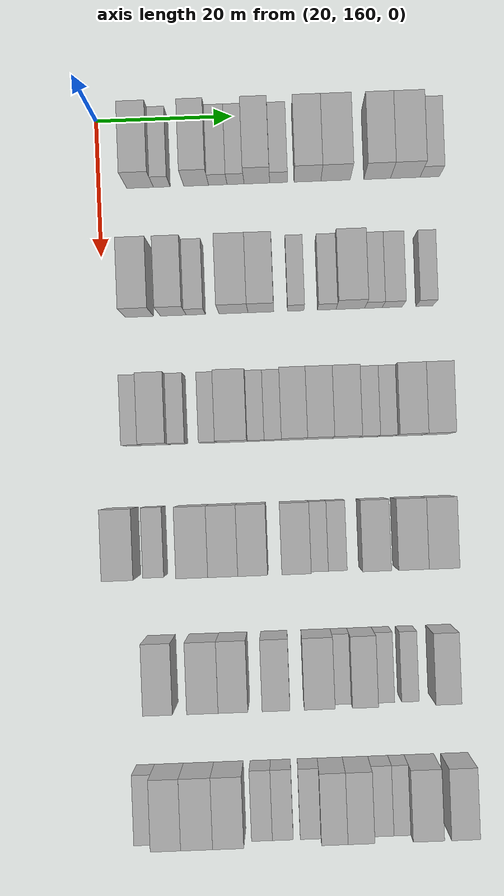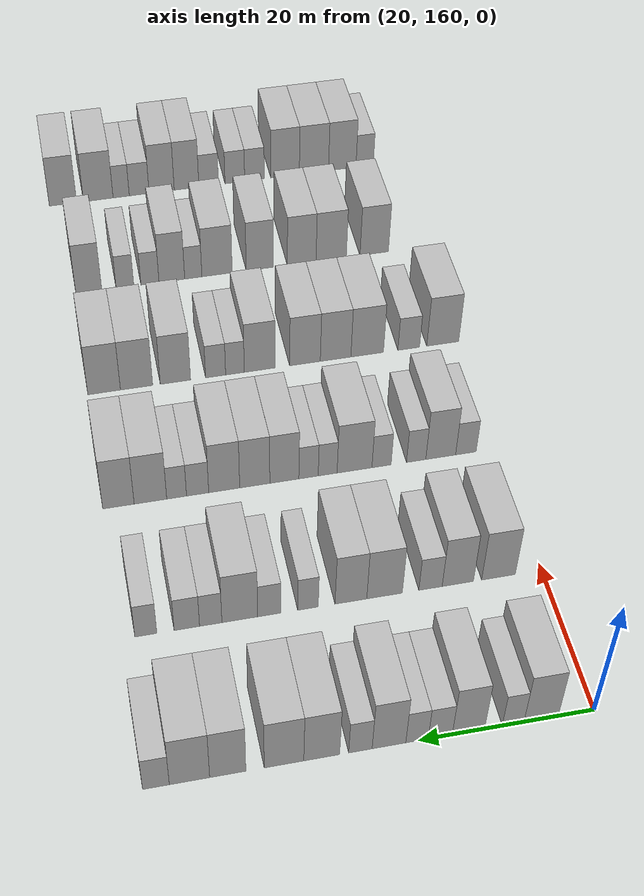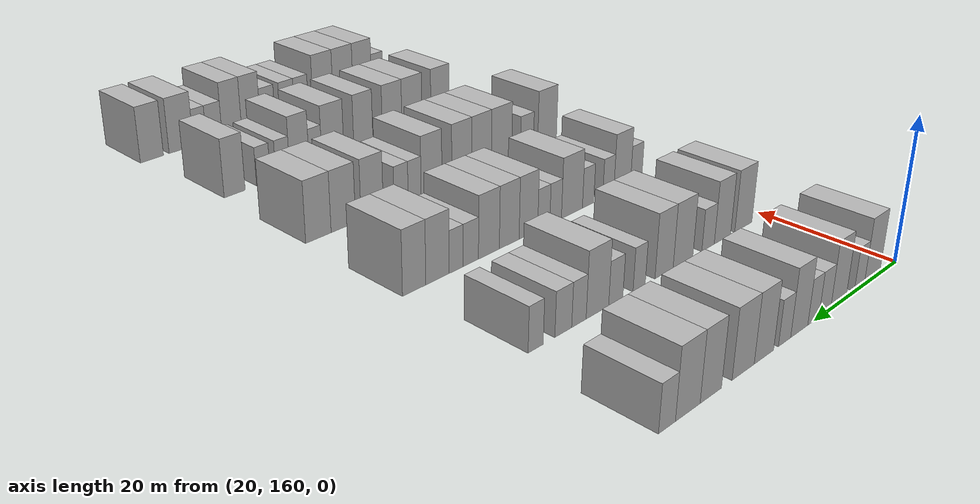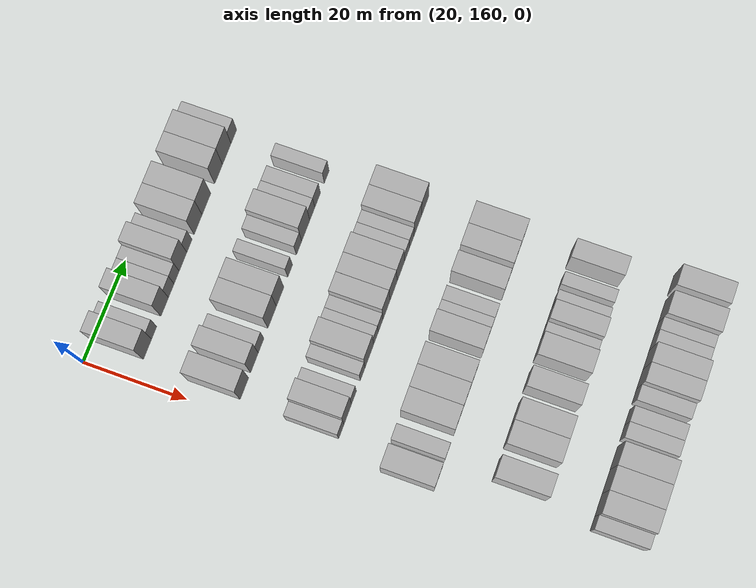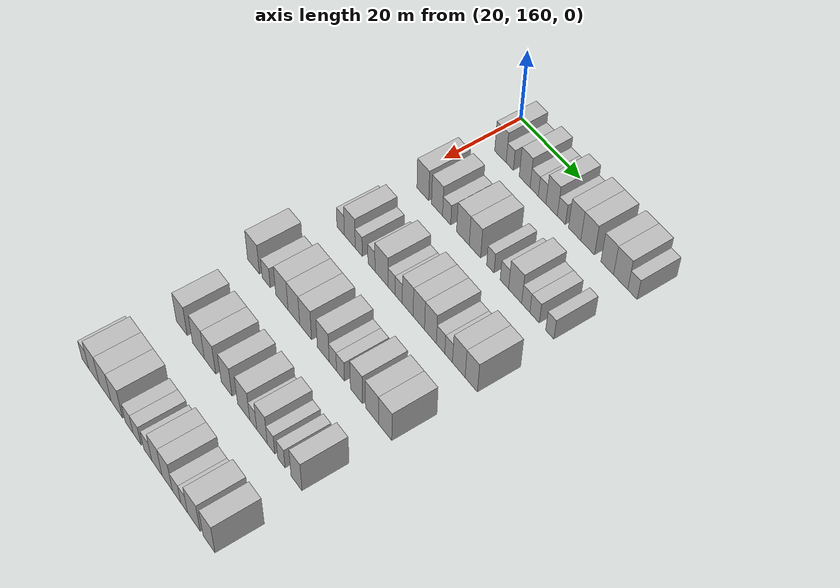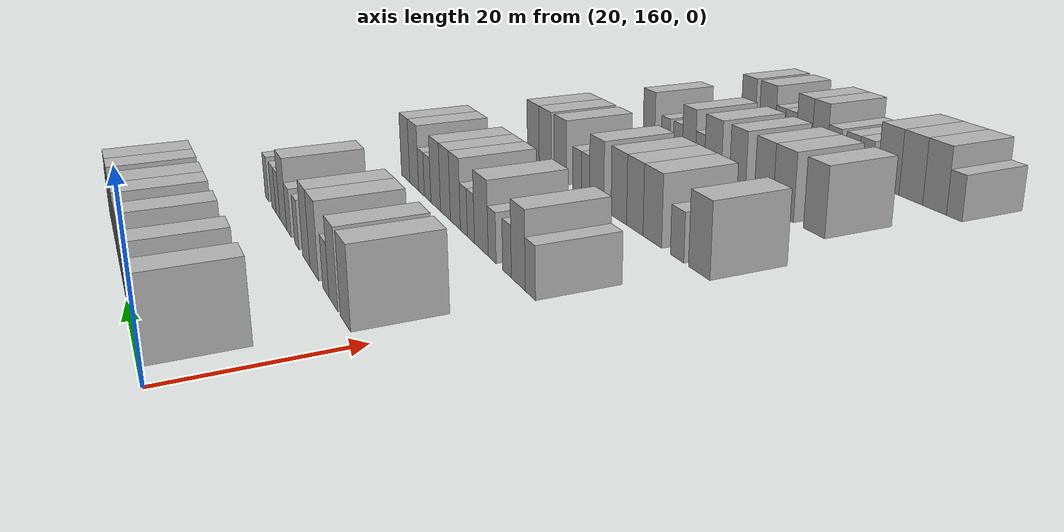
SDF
<sdf version="1.6">
 <world name="default">
  <model name="building_128">
   <static>1</static>
   <pose>25.0000 166.0860 0 0.000000 0.000000 0.000000</pose>
   <link name="link">
    <pose>0 0 4.50 0 0 0</pose>
    <collision name="collision"><geometry><box><size>10.0000 3.9395 9.0000</size></box></geometry></collision>
    <visual name="visual">
     <cast_shadows>0</cast_shadows>
     <geometry><box><size>10.0000 3.9395 9.0000</size></box></geometry>
     <material>
      <script>
       <uri>model://HANNAS_wall/materials/scripts</uri>
       <uri>model://HANNAS_wall/materials/textures</uri>
       <name>vrc/HANNAS_wall</name>
      </script>
     </material>
    </visual>
   </link>
  </model>
  <model name="building_129">
   <static>1</static>
   <pose>25.0000 169.2909 0 0.000000 0.000000 0.000000</pose>
   <link name="link">
    <pose>0 0 3.00 0 0 0</pose>
    <collision name="collision"><geometry><box><size>10.0000 2.4702 6.0000</size></box></geometry></collision>
    <visual name="visual">
     <cast_shadows>0</cast_shadows>
     <geometry><box><size>10.0000 2.4702 6.0000</size></box></geometry>
     <material>
      <script>
       <uri>model://HANNAS_wall/materials/scripts</uri>
       <uri>model://HANNAS_wall/materials/textures</uri>
       <name>vrc/HANNAS_wall</name>
      </script>
     </material>
    </visual>
   </link>
  </model>
  <model name="building_130">
   <static>1</static>
   <pose>25.0000 174.3585 0 0.000000 0.000000 0.000000</pose>
   <link name="link">
    <pose>0 0 4.50 0 0 0</pose>
    <collision name="collision"><geometry><box><size>10.0000 3.6649 9.0000</size></box></geometry></collision>
    <visual name="visual">
     <cast_shadows>0</cast_shadows>
     <geometry><box><size>10.0000 3.6649 9.0000</size></box></geometry>
     <material>
      <script>
       <uri>model://HANNAS_wall/materials/scripts</uri>
       <uri>model://HANNAS_wall/materials/textures</uri>
       <name>vrc/HANNAS_wall</name>
      </script>
     </material>
    </visual>
   </link>
  </model>
  <model name="building_131">
   <static>1</static>
   <pose>25.0000 177.5501 0 0.000000 0.000000 0.000000</pose>
   <link name="link">
    <pose>0 0 3.00 0 0 0</pose>
    <collision name="collision"><geometry><box><size>10.0000 2.7184 6.0000</size></box></geometry></collision>
    <visual name="visual">
     <cast_shadows>0</cast_shadows>
     <geometry><box><size>10.0000 2.7184 6.0000</size></box></geometry>
     <material>
      <script>
       <uri>model://HANNAS_wall/materials/scripts</uri>
       <uri>model://HANNAS_wall/materials/textures</uri>
       <name>vrc/HANNAS_wall</name>
      </script>
     </material>
    </visual>
   </link>
  </model>
  <model name="building_132">
   <static>1</static>
   <pose>25.0000 180.1657 0 0.000000 0.000000 0.000000</pose>
   <link name="link">
    <pose>0 0 3.00 0 0 0</pose>
    <collision name="collision"><geometry><box><size>10.0000 2.5128 6.0000</size></box></geometry></collision>
    <visual name="visual">
     <cast_shadows>0</cast_shadows>
     <geometry><box><size>10.0000 2.5128 6.0000</size></box></geometry>
     <material>
      <script>
       <uri>model://HANNAS_wall/materials/scripts</uri>
       <uri>model://HANNAS_wall/materials/textures</uri>
       <name>vrc/HANNAS_wall</name>
      </script>
     </material>
    </visual>
   </link>
  </model>
  <model name="building_133">
   <static>1</static>
   <pose>25.0000 183.3010 0 0.000000 0.000000 0.000000</pose>
   <link name="link">
    <pose>0 0 4.50 0 0 0</pose>
    <collision name="collision"><geometry><box><size>10.0000 3.7578 9.0000</size></box></geometry></collision>
    <visual name="visual">
     <cast_shadows>0</cast_shadows>
     <geometry><box><size>10.0000 3.7578 9.0000</size></box></geometry>
     <material>
      <script>
       <uri>model://HANNAS_wall/materials/scripts</uri>
       <uri>model://HANNAS_wall/materials/textures</uri>
       <name>vrc/HANNAS_wall</name>
      </script>
     </material>
    </visual>
   </link>
  </model>
  <model name="building_134">
   <static>1</static>
   <pose>25.0000 186.4812 0 0.000000 0.000000 0.000000</pose>
   <link name="link">
    <pose>0 0 3.00 0 0 0</pose>
    <collision name="collision"><geometry><box><size>10.0000 2.6027 6.0000</size></box></geometry></collision>
    <visual name="visual">
     <cast_shadows>0</cast_shadows>
     <geometry><box><size>10.0000 2.6027 6.0000</size></box></geometry>
     <material>
      <script>
       <uri>model://HANNAS_wall/materials/scripts</uri>
       <uri>model://HANNAS_wall/materials/textures</uri>
       <name>vrc/HANNAS_wall</name>
      </script>
     </material>
    </visual>
   </link>
  </model>
  <model name="building_135">
   <static>1</static>
   <pose>25.0000 190.7605 0 0.000000 0.000000 0.000000</pose>
   <link name="link">
    <pose>0 0 4.50 0 0 0</pose>
    <collision name="collision"><geometry><box><size>10.0000 3.9559 9.0000</size></box></geometry></collision>
    <visual name="visual">
     <cast_shadows>0</cast_shadows>
     <geometry><box><size>10.0000 3.9559 9.0000</size></box></geometry>
     <material>
      <script>
       <uri>model://HANNAS_wall/materials/scripts</uri>
       <uri>model://HANNAS_wall/materials/textures</uri>
       <name>vrc/HANNAS_wall</name>
      </script>
     </material>
    </visual>
   </link>
  </model>
  <model name="building_136">
   <static>1</static>
   <pose>25.0000 194.9058 0 0.000000 0.000000 0.000000</pose>
   <link name="link">
    <pose>0 0 4.50 0 0 0</pose>
    <collision name="collision"><geometry><box><size>10.0000 4.3346 9.0000</size></box></geometry></collision>
    <visual name="visual">
     <cast_shadows>0</cast_shadows>
     <geometry><box><size>10.0000 4.3346 9.0000</size></box></geometry>
     <material>
      <script>
       <uri>model://HANNAS_wall/materials/scripts</uri>
       <uri>model://HANNAS_wall/materials/textures</uri>
       <name>vrc/HANNAS_wall</name>
      </script>
     </material>
    </visual>
   </link>
  </model>
  <model name="building_137">
   <static>1</static>
   <pose>25.0000 201.0375 0 0.000000 0.000000 0.000000</pose>
   <link name="link">
    <pose>0 0 4.50 0 0 0</pose>
    <collision name="collision"><geometry><box><size>10.0000 3.9288 9.0000</size></box></geometry></collision>
    <visual name="visual">
     <cast_shadows>0</cast_shadows>
     <geometry><box><size>10.0000 3.9288 9.0000</size></box></geometry>
     <material>
      <script>
       <uri>model://HANNAS_wall/materials/scripts</uri>
       <uri>model://HANNAS_wall/materials/textures</uri>
       <name>vrc/HANNAS_wall</name>
      </script>
     </material>
    </visual>
   </link>
  </model>
  <model name="building_138">
   <static>1</static>
   <pose>25.0000 205.1769 0 0.000000 0.000000 0.000000</pose>
   <link name="link">
    <pose>0 0 4.50 0 0 0</pose>
    <collision name="collision"><geometry><box><size>10.0000 4.3500 9.0000</size></box></geometry></collision>
    <visual name="visual">
     <cast_shadows>0</cast_shadows>
     <geometry><box><size>10.0000 4.3500 9.0000</size></box></geometry>
     <material>
      <script>
       <uri>model://HANNAS_wall/materials/scripts</uri>
       <uri>model://HANNAS_wall/materials/textures</uri>
       <name>vrc/HANNAS_wall</name>
      </script>
     </material>
    </visual>
   </link>
  </model>
  <model name="building_139">
   <static>1</static>
   <pose>25.0000 208.7874 0 0.000000 0.000000 0.000000</pose>
   <link name="link">
    <pose>0 0 3.00 0 0 0</pose>
    <collision name="collision"><geometry><box><size>10.0000 2.8711 6.0000</size></box></geometry></collision>
    <visual name="visual">
     <cast_shadows>0</cast_shadows>
     <geometry><box><size>10.0000 2.8711 6.0000</size></box></geometry>
     <material>
      <script>
       <uri>model://HANNAS_wall/materials/scripts</uri>
       <uri>model://HANNAS_wall/materials/textures</uri>
       <name>vrc/HANNAS_wall</name>
      </script>
     </material>
    </visual>
   </link>
  </model>
  <model name="building_307">
   <static>1</static>
   <pose>44.0000 165.3060 0 0.000000 0.000000 0.000000</pose>
   <link name="link">
    <pose>0 0 4.50 0 0 0</pose>
    <collision name="collision"><geometry><box><size>10.0000 4.1346 9.0000</size></box></geometry></collision>
    <visual name="visual">
     <cast_shadows>0</cast_shadows>
     <geometry><box><size>10.0000 4.1346 9.0000</size></box></geometry>
     <material>
      <script>
       <uri>model://HANNAS_wall/materials/scripts</uri>
       <uri>model://HANNAS_wall/materials/textures</uri>
       <name>vrc/HANNAS_wall</name>
      </script>
     </material>
    </visual>
   </link>
  </model>
  <model name="building_308">
   <static>1</static>
   <pose>44.0000 170.2809 0 0.000000 0.000000 0.000000</pose>
   <link name="link">
    <pose>0 0 4.50 0 0 0</pose>
    <collision name="collision"><geometry><box><size>10.0000 3.8152 9.0000</size></box></geometry></collision>
    <visual name="visual">
     <cast_shadows>0</cast_shadows>
     <geometry><box><size>10.0000 3.8152 9.0000</size></box></geometry>
     <material>
      <script>
       <uri>model://HANNAS_wall/materials/scripts</uri>
       <uri>model://HANNAS_wall/materials/textures</uri>
       <name>vrc/HANNAS_wall</name>
      </script>
     </material>
    </visual>
   </link>
  </model>
  <model name="building_309">
   <static>1</static>
   <pose>44.0000 173.5992 0 0.000000 0.000000 0.000000</pose>
   <link name="link">
    <pose>0 0 3.00 0 0 0</pose>
    <collision name="collision"><geometry><box><size>10.0000 2.8216 6.0000</size></box></geometry></collision>
    <visual name="visual">
     <cast_shadows>0</cast_shadows>
     <geometry><box><size>10.0000 2.8216 6.0000</size></box></geometry>
     <material>
      <script>
       <uri>model://HANNAS_wall/materials/scripts</uri>
       <uri>model://HANNAS_wall/materials/textures</uri>
       <name>vrc/HANNAS_wall</name>
      </script>
     </material>
    </visual>
   </link>
  </model>
  <model name="building_310">
   <static>1</static>
   <pose>44.0000 179.1466 0 0.000000 0.000000 0.000000</pose>
   <link name="link">
    <pose>0 0 4.50 0 0 0</pose>
    <collision name="collision"><geometry><box><size>10.0000 4.2730 9.0000</size></box></geometry></collision>
    <visual name="visual">
     <cast_shadows>0</cast_shadows>
     <geometry><box><size>10.0000 4.2730 9.0000</size></box></geometry>
     <material>
      <script>
       <uri>model://HANNAS_wall/materials/scripts</uri>
       <uri>model://HANNAS_wall/materials/textures</uri>
       <name>vrc/HANNAS_wall</name>
      </script>
     </material>
    </visual>
   </link>
  </model>
  <model name="building_311">
   <static>1</static>
   <pose>44.0000 183.1837 0 0.000000 0.000000 0.000000</pose>
   <link name="link">
    <pose>0 0 4.50 0 0 0</pose>
    <collision name="collision"><geometry><box><size>10.0000 3.8012 9.0000</size></box></geometry></collision>
    <visual name="visual">
     <cast_shadows>0</cast_shadows>
     <geometry><box><size>10.0000 3.8012 9.0000</size></box></geometry>
     <material>
      <script>
       <uri>model://HANNAS_wall/materials/scripts</uri>
       <uri>model://HANNAS_wall/materials/textures</uri>
       <name>vrc/HANNAS_wall</name>
      </script>
     </material>
    </visual>
   </link>
  </model>
  <model name="building_312">
   <static>1</static>
   <pose>44.0000 188.3023 0 0.000000 0.000000 0.000000</pose>
   <link name="link">
    <pose>0 0 3.00 0 0 0</pose>
    <collision name="collision"><geometry><box><size>10.0000 2.4360 6.0000</size></box></geometry></collision>
    <visual name="visual">
     <cast_shadows>0</cast_shadows>
     <geometry><box><size>10.0000 2.4360 6.0000</size></box></geometry>
     <material>
      <script>
       <uri>model://HANNAS_wall/materials/scripts</uri>
       <uri>model://HANNAS_wall/materials/textures</uri>
       <name>vrc/HANNAS_wall</name>
      </script>
     </material>
    </visual>
   </link>
  </model>
  <model name="building_313">
   <static>1</static>
   <pose>44.0000 192.8859 0 0.000000 0.000000 0.000000</pose>
   <link name="link">
    <pose>0 0 3.00 0 0 0</pose>
    <collision name="collision"><geometry><box><size>10.0000 2.7312 6.0000</size></box></geometry></collision>
    <visual name="visual">
     <cast_shadows>0</cast_shadows>
     <geometry><box><size>10.0000 2.7312 6.0000</size></box></geometry>
     <material>
      <script>
       <uri>model://HANNAS_wall/materials/scripts</uri>
       <uri>model://HANNAS_wall/materials/textures</uri>
       <name>vrc/HANNAS_wall</name>
      </script>
     </material>
    </visual>
   </link>
  </model>
  <model name="building_314">
   <static>1</static>
   <pose>44.0000 196.3472 0 0.000000 0.000000 0.000000</pose>
   <link name="link">
    <pose>0 0 4.50 0 0 0</pose>
    <collision name="collision"><geometry><box><size>10.0000 4.1915 9.0000</size></box></geometry></collision>
    <visual name="visual">
     <cast_shadows>0</cast_shadows>
     <geometry><box><size>10.0000 4.1915 9.0000</size></box></geometry>
     <material>
      <script>
       <uri>model://HANNAS_wall/materials/scripts</uri>
       <uri>model://HANNAS_wall/materials/textures</uri>
       <name>vrc/HANNAS_wall</name>
      </script>
     </material>
    </visual>
   </link>
  </model>
  <model name="building_315">
   <static>1</static>
   <pose>44.0000 199.7462 0 0.000000 0.000000 0.000000</pose>
   <link name="link">
    <pose>0 0 3.00 0 0 0</pose>
    <collision name="collision"><geometry><box><size>10.0000 2.6064 6.0000</size></box></geometry></collision>
    <visual name="visual">
     <cast_shadows>0</cast_shadows>
     <geometry><box><size>10.0000 2.6064 6.0000</size></box></geometry>
     <material>
      <script>
       <uri>model://HANNAS_wall/materials/scripts</uri>
       <uri>model://HANNAS_wall/materials/textures</uri>
       <name>vrc/HANNAS_wall</name>
      </script>
     </material>
    </visual>
   </link>
  </model>
  <model name="building_316">
   <static>1</static>
   <pose>44.0000 202.5289 0 0.000000 0.000000 0.000000</pose>
   <link name="link">
    <pose>0 0 3.00 0 0 0</pose>
    <collision name="collision"><geometry><box><size>10.0000 2.9592 6.0000</size></box></geometry></collision>
    <visual name="visual">
     <cast_shadows>0</cast_shadows>
     <geometry><box><size>10.0000 2.9592 6.0000</size></box></geometry>
     <material>
      <script>
       <uri>model://HANNAS_wall/materials/scripts</uri>
       <uri>model://HANNAS_wall/materials/textures</uri>
       <name>vrc/HANNAS_wall</name>
      </script>
     </material>
    </visual>
   </link>
  </model>
  <model name="building_317">
   <static>1</static>
   <pose>44.0000 207.2795 0 0.000000 0.000000 0.000000</pose>
   <link name="link">
    <pose>0 0 3.00 0 0 0</pose>
    <collision name="collision"><geometry><box><size>10.0000 2.5419 6.0000</size></box></geometry></collision>
    <visual name="visual">
     <cast_shadows>0</cast_shadows>
     <geometry><box><size>10.0000 2.5419 6.0000</size></box></geometry>
     <material>
      <script>
       <uri>model://HANNAS_wall/materials/scripts</uri>
       <uri>model://HANNAS_wall/materials/textures</uri>
       <name>vrc/HANNAS_wall</name>
      </script>
     </material>
    </visual>
   </link>
  </model>
  <model name="building_484">
   <static>1</static>
   <pose>63.0000 163.9358 0 0.000000 0.000000 0.000000</pose>
   <link name="link">
    <pose>0 0 3.00 0 0 0</pose>
    <collision name="collision"><geometry><box><size>10.0000 2.6902 6.0000</size></box></geometry></collision>
    <visual name="visual">
     <cast_shadows>0</cast_shadows>
     <geometry><box><size>10.0000 2.6902 6.0000</size></box></geometry>
     <material>
      <script>
       <uri>model://HANNAS_wall/materials/scripts</uri>
       <uri>model://HANNAS_wall/materials/textures</uri>
       <name>vrc/HANNAS_wall</name>
      </script>
     </material>
    </visual>
   </link>
  </model>
  <model name="building_485">
   <static>1</static>
   <pose>63.0000 167.2202 0 0.000000 0.000000 0.000000</pose>
   <link name="link">
    <pose>0 0 4.50 0 0 0</pose>
    <collision name="collision"><geometry><box><size>10.0000 3.8787 9.0000</size></box></geometry></collision>
    <visual name="visual">
     <cast_shadows>0</cast_shadows>
     <geometry><box><size>10.0000 3.8787 9.0000</size></box></geometry>
     <material>
      <script>
       <uri>model://HANNAS_wall/materials/scripts</uri>
       <uri>model://HANNAS_wall/materials/textures</uri>
       <name>vrc/HANNAS_wall</name>
      </script>
     </material>
    </visual>
   </link>
  </model>
  <model name="building_486">
   <static>1</static>
   <pose>63.0000 170.4109 0 0.000000 0.000000 0.000000</pose>
   <link name="link">
    <pose>0 0 3.00 0 0 0</pose>
    <collision name="collision"><geometry><box><size>10.0000 2.5028 6.0000</size></box></geometry></collision>
    <visual name="visual">
     <cast_shadows>0</cast_shadows>
     <geometry><box><size>10.0000 2.5028 6.0000</size></box></geometry>
     <material>
      <script>
       <uri>model://HANNAS_wall/materials/scripts</uri>
       <uri>model://HANNAS_wall/materials/textures</uri>
       <name>vrc/HANNAS_wall</name>
      </script>
     </material>
    </visual>
   </link>
  </model>
  <model name="building_487">
   <static>1</static>
   <pose>63.0000 174.8974 0 0.000000 0.000000 0.000000</pose>
   <link name="link">
    <pose>0 0 3.00 0 0 0</pose>
    <collision name="collision"><geometry><box><size>10.0000 2.4702 6.0000</size></box></geometry></collision>
    <visual name="visual">
     <cast_shadows>0</cast_shadows>
     <geometry><box><size>10.0000 2.4702 6.0000</size></box></geometry>
     <material>
      <script>
       <uri>model://HANNAS_wall/materials/scripts</uri>
       <uri>model://HANNAS_wall/materials/textures</uri>
       <name>vrc/HANNAS_wall</name>
      </script>
     </material>
    </visual>
   </link>
  </model>
  <model name="building_488">
   <static>1</static>
   <pose>63.0000 178.3720 0 0.000000 0.000000 0.000000</pose>
   <link name="link">
    <pose>0 0 4.50 0 0 0</pose>
    <collision name="collision"><geometry><box><size>10.0000 4.4790 9.0000</size></box></geometry></collision>
    <visual name="visual">
     <cast_shadows>0</cast_shadows>
     <geometry><box><size>10.0000 4.4790 9.0000</size></box></geometry>
     <material>
      <script>
       <uri>model://HANNAS_wall/materials/scripts</uri>
       <uri>model://HANNAS_wall/materials/textures</uri>
       <name>vrc/HANNAS_wall</name>
      </script>
     </material>
    </visual>
   </link>
  </model>
  <model name="building_489">
   <static>1</static>
   <pose>63.0000 181.8153 0 0.000000 0.000000 0.000000</pose>
   <link name="link">
    <pose>0 0 3.00 0 0 0</pose>
    <collision name="collision"><geometry><box><size>10.0000 2.4075 6.0000</size></box></geometry></collision>
    <visual name="visual">
     <cast_shadows>0</cast_shadows>
     <geometry><box><size>10.0000 2.4075 6.0000</size></box></geometry>
     <material>
      <script>
       <uri>model://HANNAS_wall/materials/scripts</uri>
       <uri>model://HANNAS_wall/materials/textures</uri>
       <name>vrc/HANNAS_wall</name>
      </script>
     </material>
    </visual>
   </link>
  </model>
  <model name="building_490">
   <static>1</static>
   <pose>63.0000 184.2536 0 0.000000 0.000000 0.000000</pose>
   <link name="link">
    <pose>0 0 3.00 0 0 0</pose>
    <collision name="collision"><geometry><box><size>10.0000 2.4691 6.0000</size></box></geometry></collision>
    <visual name="visual">
     <cast_shadows>0</cast_shadows>
     <geometry><box><size>10.0000 2.4691 6.0000</size></box></geometry>
     <material>
      <script>
       <uri>model://HANNAS_wall/materials/scripts</uri>
       <uri>model://HANNAS_wall/materials/textures</uri>
       <name>vrc/HANNAS_wall</name>
      </script>
     </material>
    </visual>
   </link>
  </model>
  <model name="building_491">
   <static>1</static>
   <pose>63.0000 187.3298 0 0.000000 0.000000 0.000000</pose>
   <link name="link">
    <pose>0 0 4.50 0 0 0</pose>
    <collision name="collision"><geometry><box><size>10.0000 3.6833 9.0000</size></box></geometry></collision>
    <visual name="visual">
     <cast_shadows>0</cast_shadows>
     <geometry><box><size>10.0000 3.6833 9.0000</size></box></geometry>
     <material>
      <script>
       <uri>model://HANNAS_wall/materials/scripts</uri>
       <uri>model://HANNAS_wall/materials/textures</uri>
       <name>vrc/HANNAS_wall</name>
      </script>
     </material>
    </visual>
   </link>
  </model>
  <model name="building_492">
   <static>1</static>
   <pose>63.0000 191.0708 0 0.000000 0.000000 0.000000</pose>
   <link name="link">
    <pose>0 0 4.50 0 0 0</pose>
    <collision name="collision"><geometry><box><size>10.0000 3.7985 9.0000</size></box></geometry></collision>
    <visual name="visual">
     <cast_shadows>0</cast_shadows>
     <geometry><box><size>10.0000 3.7985 9.0000</size></box></geometry>
     <material>
      <script>
       <uri>model://HANNAS_wall/materials/scripts</uri>
       <uri>model://HANNAS_wall/materials/textures</uri>
       <name>vrc/HANNAS_wall</name>
      </script>
     </material>
    </visual>
   </link>
  </model>
  <model name="building_493">
   <static>1</static>
   <pose>63.0000 194.9164 0 0.000000 0.000000 0.000000</pose>
   <link name="link">
    <pose>0 0 4.50 0 0 0</pose>
    <collision name="collision"><geometry><box><size>10.0000 3.8928 9.0000</size></box></geometry></collision>
    <visual name="visual">
     <cast_shadows>0</cast_shadows>
     <geometry><box><size>10.0000 3.8928 9.0000</size></box></geometry>
     <material>
      <script>
       <uri>model://HANNAS_wall/materials/scripts</uri>
       <uri>model://HANNAS_wall/materials/textures</uri>
       <name>vrc/HANNAS_wall</name>
      </script>
     </material>
    </visual>
   </link>
  </model>
  <model name="building_494">
   <static>1</static>
   <pose>63.0000 198.2478 0 0.000000 0.000000 0.000000</pose>
   <link name="link">
    <pose>0 0 3.00 0 0 0</pose>
    <collision name="collision"><geometry><box><size>10.0000 2.7699 6.0000</size></box></geometry></collision>
    <visual name="visual">
     <cast_shadows>0</cast_shadows>
     <geometry><box><size>10.0000 2.7699 6.0000</size></box></geometry>
     <material>
      <script>
       <uri>model://HANNAS_wall/materials/scripts</uri>
       <uri>model://HANNAS_wall/materials/textures</uri>
       <name>vrc/HANNAS_wall</name>
      </script>
     </material>
    </visual>
   </link>
  </model>
  <model name="building_495">
   <static>1</static>
   <pose>63.0000 200.8646 0 0.000000 0.000000 0.000000</pose>
   <link name="link">
    <pose>0 0 3.00 0 0 0</pose>
    <collision name="collision"><geometry><box><size>10.0000 2.4638 6.0000</size></box></geometry></collision>
    <visual name="visual">
     <cast_shadows>0</cast_shadows>
     <geometry><box><size>10.0000 2.4638 6.0000</size></box></geometry>
     <material>
      <script>
       <uri>model://HANNAS_wall/materials/scripts</uri>
       <uri>model://HANNAS_wall/materials/textures</uri>
       <name>vrc/HANNAS_wall</name>
      </script>
     </material>
    </visual>
   </link>
  </model>
  <model name="building_496">
   <static>1</static>
   <pose>63.0000 204.1154 0 0.000000 0.000000 0.000000</pose>
   <link name="link">
    <pose>0 0 4.50 0 0 0</pose>
    <collision name="collision"><geometry><box><size>10.0000 4.0377 9.0000</size></box></geometry></collision>
    <visual name="visual">
     <cast_shadows>0</cast_shadows>
     <geometry><box><size>10.0000 4.0377 9.0000</size></box></geometry>
     <material>
      <script>
       <uri>model://HANNAS_wall/materials/scripts</uri>
       <uri>model://HANNAS_wall/materials/textures</uri>
       <name>vrc/HANNAS_wall</name>
      </script>
     </material>
    </visual>
   </link>
  </model>
  <model name="building_497">
   <static>1</static>
   <pose>63.0000 208.0748 0 0.000000 0.000000 0.000000</pose>
   <link name="link">
    <pose>0 0 4.50 0 0 0</pose>
    <collision name="collision"><geometry><box><size>10.0000 3.8813 9.0000</size></box></geometry></collision>
    <visual name="visual">
     <cast_shadows>0</cast_shadows>
     <geometry><box><size>10.0000 3.8813 9.0000</size></box></geometry>
     <material>
      <script>
       <uri>model://HANNAS_wall/materials/scripts</uri>
       <uri>model://HANNAS_wall/materials/textures</uri>
       <name>vrc/HANNAS_wall</name>
      </script>
     </material>
    </visual>
   </link>
  </model>
  <model name="building_664">
   <static>1</static>
   <pose>82.0000 161.8027 0 0.000000 0.000000 0.000000</pose>
   <link name="link">
    <pose>0 0 4.50 0 0 0</pose>
    <collision name="collision"><geometry><box><size>10.0000 4.4450 9.0000</size></box></geometry></collision>
    <visual name="visual">
     <cast_shadows>0</cast_shadows>
     <geometry><box><size>10.0000 4.4450 9.0000</size></box></geometry>
     <material>
      <script>
       <uri>model://HANNAS_wall/materials/scripts</uri>
       <uri>model://HANNAS_wall/materials/textures</uri>
       <name>vrc/HANNAS_wall</name>
      </script>
     </material>
    </visual>
   </link>
  </model>
  <model name="building_665">
   <static>1</static>
   <pose>82.0000 166.5209 0 0.000000 0.000000 0.000000</pose>
   <link name="link">
    <pose>0 0 3.00 0 0 0</pose>
    <collision name="collision"><geometry><box><size>10.0000 2.9914 6.0000</size></box></geometry></collision>
    <visual name="visual">
     <cast_shadows>0</cast_shadows>
     <geometry><box><size>10.0000 2.9914 6.0000</size></box></geometry>
     <material>
      <script>
       <uri>model://HANNAS_wall/materials/scripts</uri>
       <uri>model://HANNAS_wall/materials/textures</uri>
       <name>vrc/HANNAS_wall</name>
      </script>
     </material>
    </visual>
   </link>
  </model>
  <model name="building_666">
   <static>1</static>
   <pose>82.0000 172.2509 0 0.000000 0.000000 0.000000</pose>
   <link name="link">
    <pose>0 0 4.50 0 0 0</pose>
    <collision name="collision"><geometry><box><size>10.0000 4.4686 9.0000</size></box></geometry></collision>
    <visual name="visual">
     <cast_shadows>0</cast_shadows>
     <geometry><box><size>10.0000 4.4686 9.0000</size></box></geometry>
     <material>
      <script>
       <uri>model://HANNAS_wall/materials/scripts</uri>
       <uri>model://HANNAS_wall/materials/textures</uri>
       <name>vrc/HANNAS_wall</name>
      </script>
     </material>
    </visual>
   </link>
  </model>
  <model name="building_667">
   <static>1</static>
   <pose>82.0000 176.5800 0 0.000000 0.000000 0.000000</pose>
   <link name="link">
    <pose>0 0 4.50 0 0 0</pose>
    <collision name="collision"><geometry><box><size>10.0000 4.1896 9.0000</size></box></geometry></collision>
    <visual name="visual">
     <cast_shadows>0</cast_shadows>
     <geometry><box><size>10.0000 4.1896 9.0000</size></box></geometry>
     <material>
      <script>
       <uri>model://HANNAS_wall/materials/scripts</uri>
       <uri>model://HANNAS_wall/materials/textures</uri>
       <name>vrc/HANNAS_wall</name>
      </script>
     </material>
    </visual>
   </link>
  </model>
  <model name="building_668">
   <static>1</static>
   <pose>82.0000 180.7587 0 0.000000 0.000000 0.000000</pose>
   <link name="link">
    <pose>0 0 4.50 0 0 0</pose>
    <collision name="collision"><geometry><box><size>10.0000 4.1679 9.0000</size></box></geometry></collision>
    <visual name="visual">
     <cast_shadows>0</cast_shadows>
     <geometry><box><size>10.0000 4.1679 9.0000</size></box></geometry>
     <material>
      <script>
       <uri>model://HANNAS_wall/materials/scripts</uri>
       <uri>model://HANNAS_wall/materials/textures</uri>
       <name>vrc/HANNAS_wall</name>
      </script>
     </material>
    </visual>
   </link>
  </model>
  <model name="building_669">
   <static>1</static>
   <pose>82.0000 186.9031 0 0.000000 0.000000 0.000000</pose>
   <link name="link">
    <pose>0 0 4.50 0 0 0</pose>
    <collision name="collision"><geometry><box><size>10.0000 4.1209 9.0000</size></box></geometry></collision>
    <visual name="visual">
     <cast_shadows>0</cast_shadows>
     <geometry><box><size>10.0000 4.1209 9.0000</size></box></geometry>
     <material>
      <script>
       <uri>model://HANNAS_wall/materials/scripts</uri>
       <uri>model://HANNAS_wall/materials/textures</uri>
       <name>vrc/HANNAS_wall</name>
      </script>
     </material>
    </visual>
   </link>
  </model>
  <model name="building_670">
   <static>1</static>
   <pose>82.0000 190.2175 0 0.000000 0.000000 0.000000</pose>
   <link name="link">
    <pose>0 0 3.00 0 0 0</pose>
    <collision name="collision"><geometry><box><size>10.0000 2.5078 6.0000</size></box></geometry></collision>
    <visual name="visual">
     <cast_shadows>0</cast_shadows>
     <geometry><box><size>10.0000 2.5078 6.0000</size></box></geometry>
     <material>
      <script>
       <uri>model://HANNAS_wall/materials/scripts</uri>
       <uri>model://HANNAS_wall/materials/textures</uri>
       <name>vrc/HANNAS_wall</name>
      </script>
     </material>
    </visual>
   </link>
  </model>
  <model name="building_671">
   <static>1</static>
   <pose>82.0000 192.8126 0 0.000000 0.000000 0.000000</pose>
   <link name="link">
    <pose>0 0 3.00 0 0 0</pose>
    <collision name="collision"><geometry><box><size>10.0000 2.6825 6.0000</size></box></geometry></collision>
    <visual name="visual">
     <cast_shadows>0</cast_shadows>
     <geometry><box><size>10.0000 2.6825 6.0000</size></box></geometry>
     <material>
      <script>
       <uri>model://HANNAS_wall/materials/scripts</uri>
       <uri>model://HANNAS_wall/materials/textures</uri>
       <name>vrc/HANNAS_wall</name>
      </script>
     </material>
    </visual>
   </link>
  </model>
  <model name="building_672">
   <static>1</static>
   <pose>82.0000 198.1717 0 0.000000 0.000000 0.000000</pose>
   <link name="link">
    <pose>0 0 4.50 0 0 0</pose>
    <collision name="collision"><geometry><box><size>10.0000 4.0356 9.0000</size></box></geometry></collision>
    <visual name="visual">
     <cast_shadows>0</cast_shadows>
     <geometry><box><size>10.0000 4.0356 9.0000</size></box></geometry>
     <material>
      <script>
       <uri>model://HANNAS_wall/materials/scripts</uri>
       <uri>model://HANNAS_wall/materials/textures</uri>
       <name>vrc/HANNAS_wall</name>
      </script>
     </material>
    </visual>
   </link>
  </model>
  <model name="building_673">
   <static>1</static>
   <pose>82.0000 203.3180 0 0.000000 0.000000 0.000000</pose>
   <link name="link">
    <pose>0 0 4.50 0 0 0</pose>
    <collision name="collision"><geometry><box><size>10.0000 4.2571 9.0000</size></box></geometry></collision>
    <visual name="visual">
     <cast_shadows>0</cast_shadows>
     <geometry><box><size>10.0000 4.2571 9.0000</size></box></geometry>
     <material>
      <script>
       <uri>model://HANNAS_wall/materials/scripts</uri>
       <uri>model://HANNAS_wall/materials/textures</uri>
       <name>vrc/HANNAS_wall</name>
      </script>
     </material>
    </visual>
   </link>
  </model>
  <model name="building_674">
   <static>1</static>
   <pose>82.0000 207.5945 0 0.000000 0.000000 0.000000</pose>
   <link name="link">
    <pose>0 0 4.50 0 0 0</pose>
    <collision name="collision"><geometry><box><size>10.0000 4.2959 9.0000</size></box></geometry></collision>
    <visual name="visual">
     <cast_shadows>0</cast_shadows>
     <geometry><box><size>10.0000 4.2959 9.0000</size></box></geometry>
     <material>
      <script>
       <uri>model://HANNAS_wall/materials/scripts</uri>
       <uri>model://HANNAS_wall/materials/textures</uri>
       <name>vrc/HANNAS_wall</name>
      </script>
     </material>
    </visual>
   </link>
  </model>
  <model name="building_839">
   <static>1</static>
   <pose>101.0000 166.7341 0 0.000000 0.000000 0.000000</pose>
   <link name="link">
    <pose>0 0 4.50 0 0 0</pose>
    <collision name="collision"><geometry><box><size>10.0000 4.1512 9.0000</size></box></geometry></collision>
    <visual name="visual">
     <cast_shadows>0</cast_shadows>
     <geometry><box><size>10.0000 4.1512 9.0000</size></box></geometry>
     <material>
      <script>
       <uri>model://HANNAS_wall/materials/scripts</uri>
       <uri>model://HANNAS_wall/materials/textures</uri>
       <name>vrc/HANNAS_wall</name>
      </script>
     </material>
    </visual>
   </link>
  </model>
  <model name="building_840">
   <static>1</static>
   <pose>101.0000 173.0082 0 0.000000 0.000000 0.000000</pose>
   <link name="link">
    <pose>0 0 4.50 0 0 0</pose>
    <collision name="collision"><geometry><box><size>10.0000 4.3969 9.0000</size></box></geometry></collision>
    <visual name="visual">
     <cast_shadows>0</cast_shadows>
     <geometry><box><size>10.0000 4.3969 9.0000</size></box></geometry>
     <material>
      <script>
       <uri>model://HANNAS_wall/materials/scripts</uri>
       <uri>model://HANNAS_wall/materials/textures</uri>
       <name>vrc/HANNAS_wall</name>
      </script>
     </material>
    </visual>
   </link>
  </model>
  <model name="building_841">
   <static>1</static>
   <pose>101.0000 177.2852 0 0.000000 0.000000 0.000000</pose>
   <link name="link">
    <pose>0 0 4.50 0 0 0</pose>
    <collision name="collision"><geometry><box><size>10.0000 4.1570 9.0000</size></box></geometry></collision>
    <visual name="visual">
     <cast_shadows>0</cast_shadows>
     <geometry><box><size>10.0000 4.1570 9.0000</size></box></geometry>
     <material>
      <script>
       <uri>model://HANNAS_wall/materials/scripts</uri>
       <uri>model://HANNAS_wall/materials/textures</uri>
       <name>vrc/HANNAS_wall</name>
      </script>
     </material>
    </visual>
   </link>
  </model>
  <model name="building_842">
   <static>1</static>
   <pose>101.0000 183.3142 0 0.000000 0.000000 0.000000</pose>
   <link name="link">
    <pose>0 0 4.50 0 0 0</pose>
    <collision name="collision"><geometry><box><size>10.0000 3.9010 9.0000</size></box></geometry></collision>
    <visual name="visual">
     <cast_shadows>0</cast_shadows>
     <geometry><box><size>10.0000 3.9010 9.0000</size></box></geometry>
     <material>
      <script>
       <uri>model://HANNAS_wall/materials/scripts</uri>
       <uri>model://HANNAS_wall/materials/textures</uri>
       <name>vrc/HANNAS_wall</name>
      </script>
     </material>
    </visual>
   </link>
  </model>
  <model name="building_843">
   <static>1</static>
   <pose>101.0000 189.4226 0 0.000000 0.000000 0.000000</pose>
   <link name="link">
    <pose>0 0 4.50 0 0 0</pose>
    <collision name="collision"><geometry><box><size>10.0000 4.3158 9.0000</size></box></geometry></collision>
    <visual name="visual">
     <cast_shadows>0</cast_shadows>
     <geometry><box><size>10.0000 4.3158 9.0000</size></box></geometry>
     <material>
      <script>
       <uri>model://HANNAS_wall/materials/scripts</uri>
       <uri>model://HANNAS_wall/materials/textures</uri>
       <name>vrc/HANNAS_wall</name>
      </script>
     </material>
    </visual>
   </link>
  </model>
  <model name="building_844">
   <static>1</static>
   <pose>101.0000 192.7994 0 0.000000 0.000000 0.000000</pose>
   <link name="link">
    <pose>0 0 3.00 0 0 0</pose>
    <collision name="collision"><geometry><box><size>10.0000 2.4378 6.0000</size></box></geometry></collision>
    <visual name="visual">
     <cast_shadows>0</cast_shadows>
     <geometry><box><size>10.0000 2.4378 6.0000</size></box></geometry>
     <material>
      <script>
       <uri>model://HANNAS_wall/materials/scripts</uri>
       <uri>model://HANNAS_wall/materials/textures</uri>
       <name>vrc/HANNAS_wall</name>
      </script>
     </material>
    </visual>
   </link>
  </model>
  <model name="building_845">
   <static>1</static>
   <pose>101.0000 195.8360 0 0.000000 0.000000 0.000000</pose>
   <link name="link">
    <pose>0 0 4.50 0 0 0</pose>
    <collision name="collision"><geometry><box><size>10.0000 3.6353 9.0000</size></box></geometry></collision>
    <visual name="visual">
     <cast_shadows>0</cast_shadows>
     <geometry><box><size>10.0000 3.6353 9.0000</size></box></geometry>
     <material>
      <script>
       <uri>model://HANNAS_wall/materials/scripts</uri>
       <uri>model://HANNAS_wall/materials/textures</uri>
       <name>vrc/HANNAS_wall</name>
      </script>
     </material>
    </visual>
   </link>
  </model>
  <model name="building_846">
   <static>1</static>
   <pose>101.0000 198.9251 0 0.000000 0.000000 0.000000</pose>
   <link name="link">
    <pose>0 0 3.00 0 0 0</pose>
    <collision name="collision"><geometry><box><size>10.0000 2.5430 6.0000</size></box></geometry></collision>
    <visual name="visual">
     <cast_shadows>0</cast_shadows>
     <geometry><box><size>10.0000 2.5430 6.0000</size></box></geometry>
     <material>
      <script>
       <uri>model://HANNAS_wall/materials/scripts</uri>
       <uri>model://HANNAS_wall/materials/textures</uri>
       <name>vrc/HANNAS_wall</name>
      </script>
     </material>
    </visual>
   </link>
  </model>
  <model name="building_847">
   <static>1</static>
   <pose>101.0000 202.4397 0 0.000000 0.000000 0.000000</pose>
   <link name="link">
    <pose>0 0 3.00 0 0 0</pose>
    <collision name="collision"><geometry><box><size>10.0000 2.4862 6.0000</size></box></geometry></collision>
    <visual name="visual">
     <cast_shadows>0</cast_shadows>
     <geometry><box><size>10.0000 2.4862 6.0000</size></box></geometry>
     <material>
      <script>
       <uri>model://HANNAS_wall/materials/scripts</uri>
       <uri>model://HANNAS_wall/materials/textures</uri>
       <name>vrc/HANNAS_wall</name>
      </script>
     </material>
    </visual>
   </link>
  </model>
  <model name="building_848">
   <static>1</static>
   <pose>101.0000 207.4921 0 0.000000 0.000000 0.000000</pose>
   <link name="link">
    <pose>0 0 4.50 0 0 0</pose>
    <collision name="collision"><geometry><box><size>10.0000 3.6186 9.0000</size></box></geometry></collision>
    <visual name="visual">
     <cast_shadows>0</cast_shadows>
     <geometry><box><size>10.0000 3.6186 9.0000</size></box></geometry>
     <material>
      <script>
       <uri>model://HANNAS_wall/materials/scripts</uri>
       <uri>model://HANNAS_wall/materials/textures</uri>
       <name>vrc/HANNAS_wall</name>
      </script>
     </material>
    </visual>
   </link>
  </model>
  <model name="building_1017">
   <static>1</static>
   <pose>120.0000 163.6644 0 0.000000 0.000000 0.000000</pose>
   <link name="link">
    <pose>0 0 3.00 0 0 0</pose>
    <collision name="collision"><geometry><box><size>10.0000 2.6792 6.0000</size></box></geometry></collision>
    <visual name="visual">
     <cast_shadows>0</cast_shadows>
     <geometry><box><size>10.0000 2.6792 6.0000</size></box></geometry>
     <material>
      <script>
       <uri>model://HANNAS_wall/materials/scripts</uri>
       <uri>model://HANNAS_wall/materials/textures</uri>
       <name>vrc/HANNAS_wall</name>
      </script>
     </material>
    </visual>
   </link>
  </model>
  <model name="building_1018">
   <static>1</static>
   <pose>120.0000 167.1272 0 0.000000 0.000000 0.000000</pose>
   <link name="link">
    <pose>0 0 4.50 0 0 0</pose>
    <collision name="collision"><geometry><box><size>10.0000 4.2466 9.0000</size></box></geometry></collision>
    <visual name="visual">
     <cast_shadows>0</cast_shadows>
     <geometry><box><size>10.0000 4.2466 9.0000</size></box></geometry>
     <material>
      <script>
       <uri>model://HANNAS_wall/materials/scripts</uri>
       <uri>model://HANNAS_wall/materials/textures</uri>
       <name>vrc/HANNAS_wall</name>
      </script>
     </material>
    </visual>
   </link>
  </model>
  <model name="building_1019">
   <static>1</static>
   <pose>120.0000 171.4868 0 0.000000 0.000000 0.000000</pose>
   <link name="link">
    <pose>0 0 4.50 0 0 0</pose>
    <collision name="collision"><geometry><box><size>10.0000 4.4725 9.0000</size></box></geometry></collision>
    <visual name="visual">
     <cast_shadows>0</cast_shadows>
     <geometry><box><size>10.0000 4.4725 9.0000</size></box></geometry>
     <material>
      <script>
       <uri>model://HANNAS_wall/materials/scripts</uri>
       <uri>model://HANNAS_wall/materials/textures</uri>
       <name>vrc/HANNAS_wall</name>
      </script>
     </material>
    </visual>
   </link>
  </model>
  <model name="building_1020">
   <static>1</static>
   <pose>120.0000 175.9040 0 0.000000 0.000000 0.000000</pose>
   <link name="link">
    <pose>0 0 4.50 0 0 0</pose>
    <collision name="collision"><geometry><box><size>10.0000 4.3620 9.0000</size></box></geometry></collision>
    <visual name="visual">
     <cast_shadows>0</cast_shadows>
     <geometry><box><size>10.0000 4.3620 9.0000</size></box></geometry>
     <material>
      <script>
       <uri>model://HANNAS_wall/materials/scripts</uri>
       <uri>model://HANNAS_wall/materials/textures</uri>
       <name>vrc/HANNAS_wall</name>
      </script>
     </material>
    </visual>
   </link>
  </model>
  <model name="building_1021">
   <static>1</static>
   <pose>120.0000 180.5712 0 0.000000 0.000000 0.000000</pose>
   <link name="link">
    <pose>0 0 3.00 0 0 0</pose>
    <collision name="collision"><geometry><box><size>10.0000 2.9723 6.0000</size></box></geometry></collision>
    <visual name="visual">
     <cast_shadows>0</cast_shadows>
     <geometry><box><size>10.0000 2.9723 6.0000</size></box></geometry>
     <material>
      <script>
       <uri>model://HANNAS_wall/materials/scripts</uri>
       <uri>model://HANNAS_wall/materials/textures</uri>
       <name>vrc/HANNAS_wall</name>
      </script>
     </material>
    </visual>
   </link>
  </model>
  <model name="building_1022">
   <static>1</static>
   <pose>120.0000 183.5438 0 0.000000 0.000000 0.000000</pose>
   <link name="link">
    <pose>0 0 3.00 0 0 0</pose>
    <collision name="collision"><geometry><box><size>10.0000 2.9730 6.0000</size></box></geometry></collision>
    <visual name="visual">
     <cast_shadows>0</cast_shadows>
     <geometry><box><size>10.0000 2.9730 6.0000</size></box></geometry>
     <material>
      <script>
       <uri>model://HANNAS_wall/materials/scripts</uri>
       <uri>model://HANNAS_wall/materials/textures</uri>
       <name>vrc/HANNAS_wall</name>
      </script>
     </material>
    </visual>
   </link>
  </model>
  <model name="building_1023">
   <static>1</static>
   <pose>120.0000 187.5009 0 0.000000 0.000000 0.000000</pose>
   <link name="link">
    <pose>0 0 3.00 0 0 0</pose>
    <collision name="collision"><geometry><box><size>10.0000 2.9412 6.0000</size></box></geometry></collision>
    <visual name="visual">
     <cast_shadows>0</cast_shadows>
     <geometry><box><size>10.0000 2.9412 6.0000</size></box></geometry>
     <material>
      <script>
       <uri>model://HANNAS_wall/materials/scripts</uri>
       <uri>model://HANNAS_wall/materials/textures</uri>
       <name>vrc/HANNAS_wall</name>
      </script>
     </material>
    </visual>
   </link>
  </model>
  <model name="building_1024">
   <static>1</static>
   <pose>120.0000 190.8213 0 0.000000 0.000000 0.000000</pose>
   <link name="link">
    <pose>0 0 4.50 0 0 0</pose>
    <collision name="collision"><geometry><box><size>10.0000 3.6995 9.0000</size></box></geometry></collision>
    <visual name="visual">
     <cast_shadows>0</cast_shadows>
     <geometry><box><size>10.0000 3.6995 9.0000</size></box></geometry>
     <material>
      <script>
       <uri>model://HANNAS_wall/materials/scripts</uri>
       <uri>model://HANNAS_wall/materials/textures</uri>
       <name>vrc/HANNAS_wall</name>
      </script>
     </material>
    </visual>
   </link>
  </model>
  <model name="building_1025">
   <static>1</static>
   <pose>120.0000 194.5499 0 0.000000 0.000000 0.000000</pose>
   <link name="link">
    <pose>0 0 4.50 0 0 0</pose>
    <collision name="collision"><geometry><box><size>10.0000 3.7578 9.0000</size></box></geometry></collision>
    <visual name="visual">
     <cast_shadows>0</cast_shadows>
     <geometry><box><size>10.0000 3.7578 9.0000</size></box></geometry>
     <material>
      <script>
       <uri>model://HANNAS_wall/materials/scripts</uri>
       <uri>model://HANNAS_wall/materials/textures</uri>
       <name>vrc/HANNAS_wall</name>
      </script>
     </material>
    </visual>
   </link>
  </model>
  <model name="building_1026">
   <static>1</static>
   <pose>120.0000 197.9041 0 0.000000 0.000000 0.000000</pose>
   <link name="link">
    <pose>0 0 3.00 0 0 0</pose>
    <collision name="collision"><geometry><box><size>10.0000 2.9506 6.0000</size></box></geometry></collision>
    <visual name="visual">
     <cast_shadows>0</cast_shadows>
     <geometry><box><size>10.0000 2.9506 6.0000</size></box></geometry>
     <material>
      <script>
       <uri>model://HANNAS_wall/materials/scripts</uri>
       <uri>model://HANNAS_wall/materials/textures</uri>
       <name>vrc/HANNAS_wall</name>
      </script>
     </material>
    </visual>
   </link>
  </model>
  <model name="building_1027">
   <static>1</static>
   <pose>120.0000 200.5816 0 0.000000 0.000000 0.000000</pose>
   <link name="link">
    <pose>0 0 3.00 0 0 0</pose>
    <collision name="collision"><geometry><box><size>10.0000 2.4045 6.0000</size></box></geometry></collision>
    <visual name="visual">
     <cast_shadows>0</cast_shadows>
     <geometry><box><size>10.0000 2.4045 6.0000</size></box></geometry>
     <material>
      <script>
       <uri>model://HANNAS_wall/materials/scripts</uri>
       <uri>model://HANNAS_wall/materials/textures</uri>
       <name>vrc/HANNAS_wall</name>
      </script>
     </material>
    </visual>
   </link>
  </model>
  <model name="building_1028">
   <static>1</static>
   <pose>120.0000 203.9742 0 0.000000 0.000000 0.000000</pose>
   <link name="link">
    <pose>0 0 4.50 0 0 0</pose>
    <collision name="collision"><geometry><box><size>10.0000 4.3806 9.0000</size></box></geometry></collision>
    <visual name="visual">
     <cast_shadows>0</cast_shadows>
     <geometry><box><size>10.0000 4.3806 9.0000</size></box></geometry>
     <material>
      <script>
       <uri>model://HANNAS_wall/materials/scripts</uri>
       <uri>model://HANNAS_wall/materials/textures</uri>
       <name>vrc/HANNAS_wall</name>
      </script>
     </material>
    </visual>
   </link>
  </model>
  <model name="building_1029">
   <static>1</static>
   <pose>120.0000 209.1754 0 0.000000 0.000000 0.000000</pose>
   <link name="link">
    <pose>0 0 4.50 0 0 0</pose>
    <collision name="collision"><geometry><box><size>10.0000 4.0218 9.0000</size></box></geometry></collision>
    <visual name="visual">
     <cast_shadows>0</cast_shadows>
     <geometry><box><size>10.0000 4.0218 9.0000</size></box></geometry>
     <material>
      <script>
       <uri>model://HANNAS_wall/materials/scripts</uri>
       <uri>model://HANNAS_wall/materials/textures</uri>
       <name>vrc/HANNAS_wall</name>
      </script>
     </material>
    </visual>
   </link>
  </model>
 </world>
</sdf>
